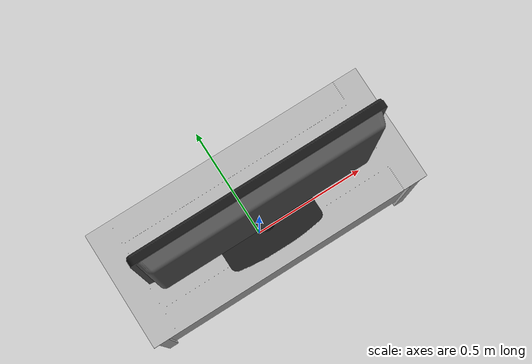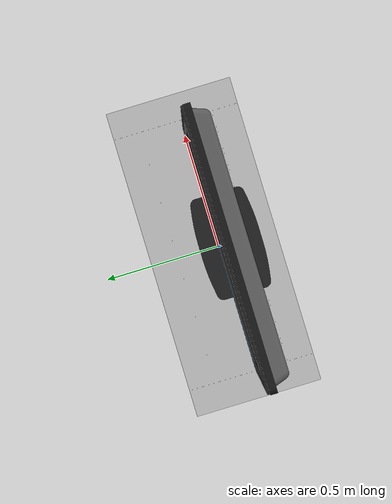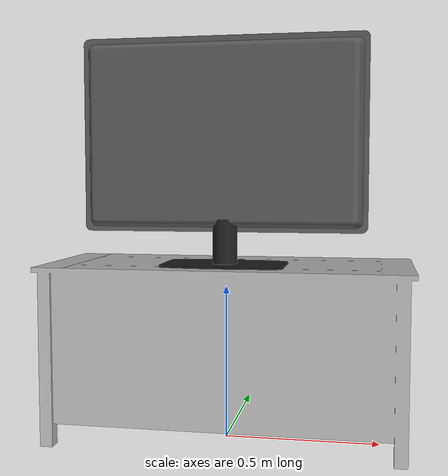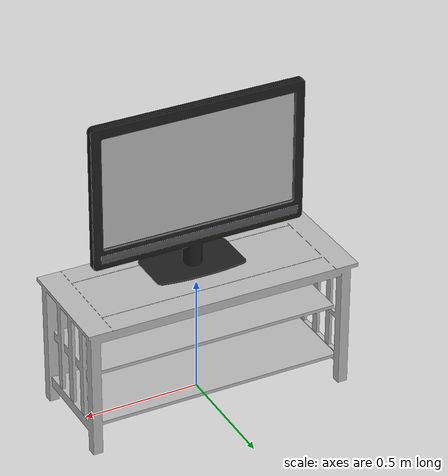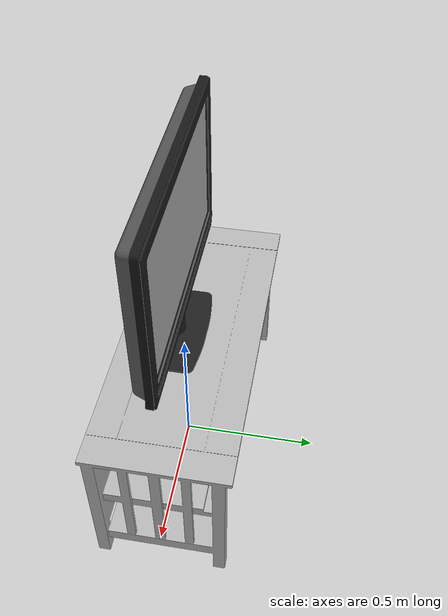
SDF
<?xml version='1.0'?>
<sdf version='1.4'>
  <model name="tv">
    <link name="tv">
      <visual name="tv">
	<geometry>
	  <mesh><uri>model://tv/meshes/tv.dae</uri></mesh>
        </geometry>
      </visual>
      <collision name="tv">
	<pose>0 0 0.67 0 0 0</pose>
	<geometry>
	  <box>
	    <size>1.19 0.44 1.34</size>
	  </box>
        </geometry>
      </collision>
    </link>
  </model>
</sdf>
